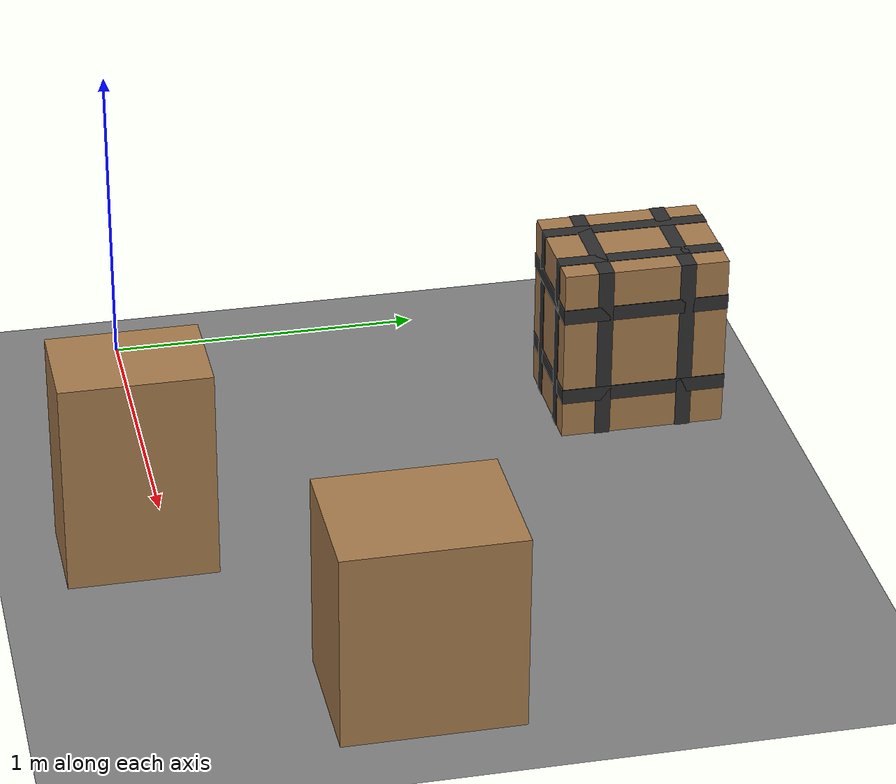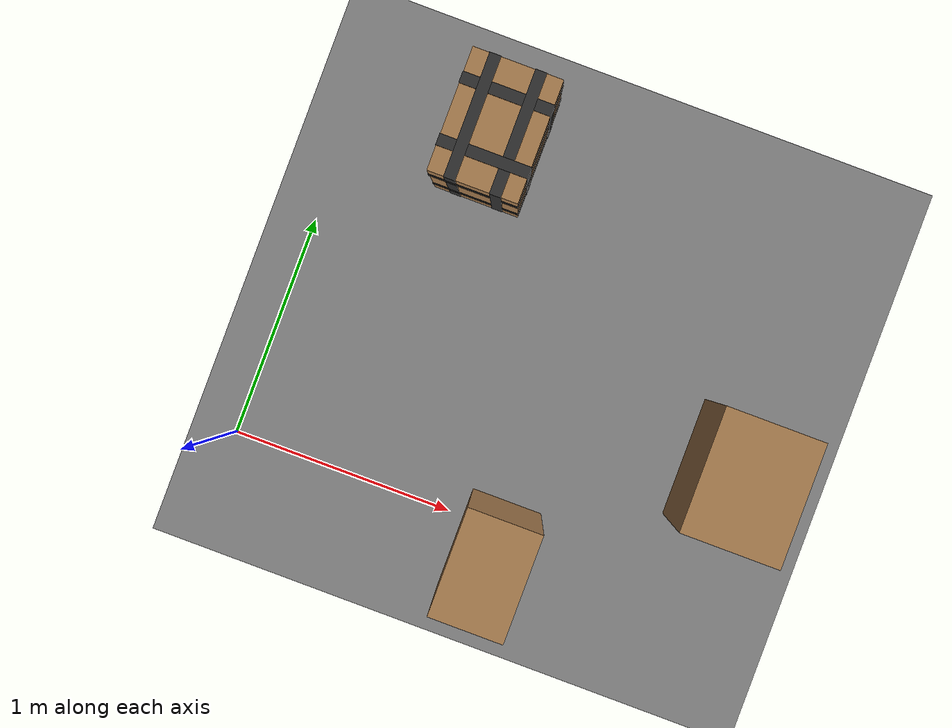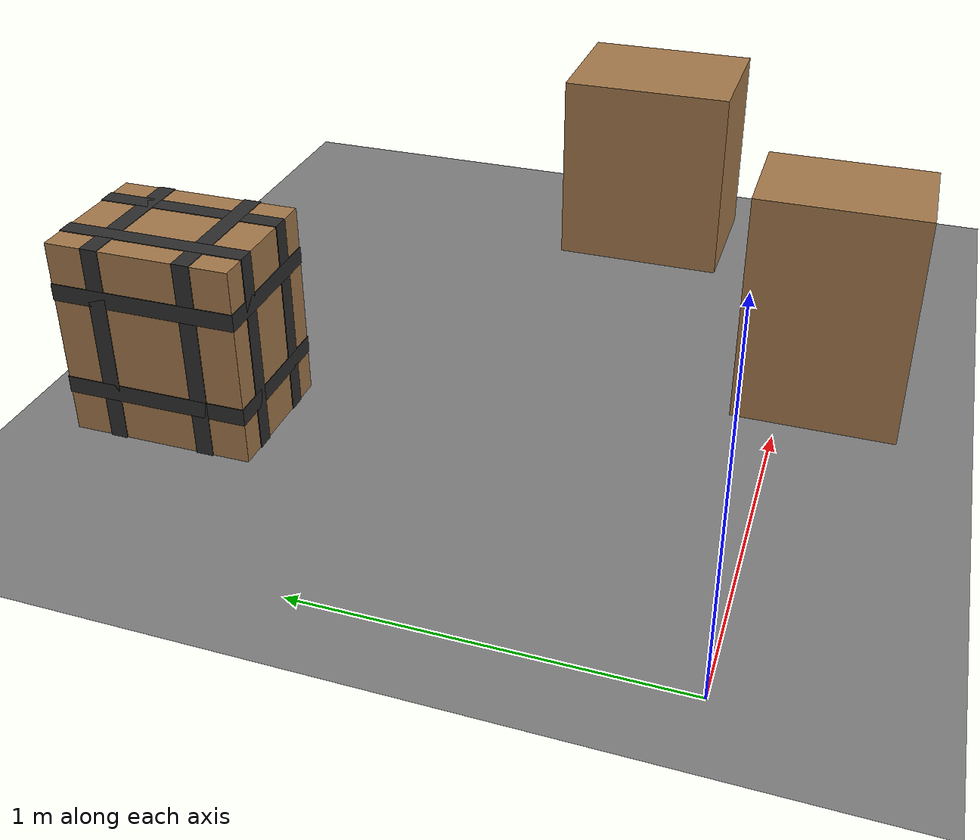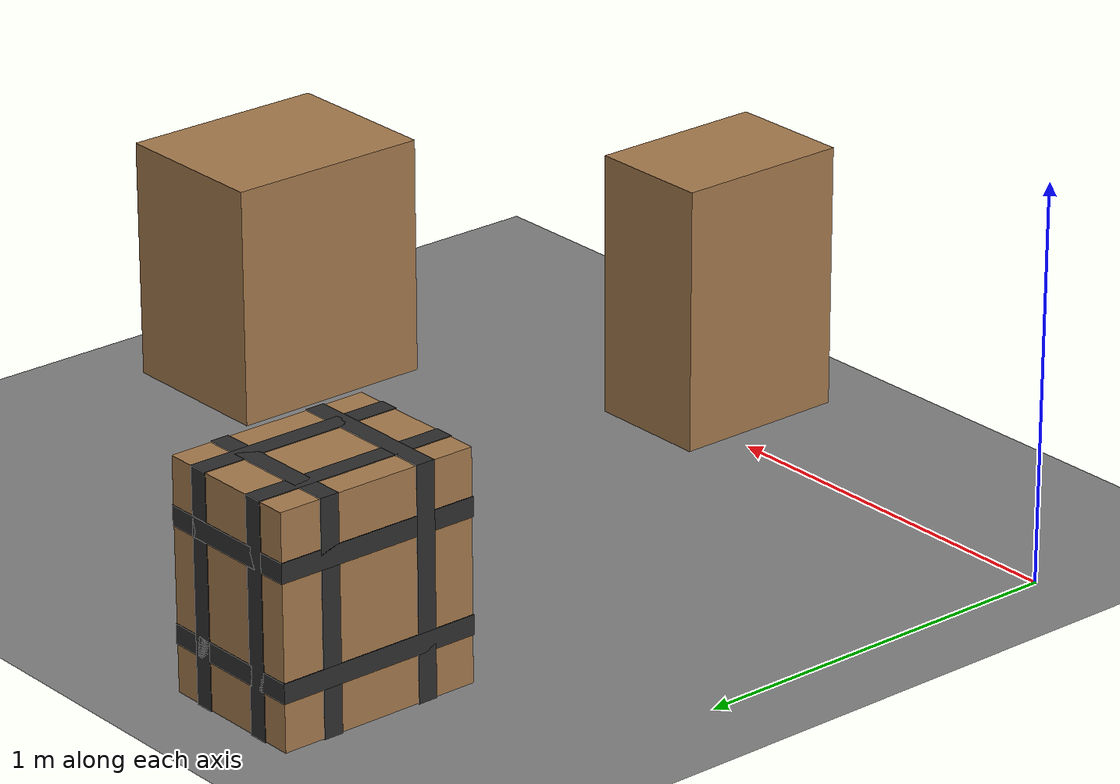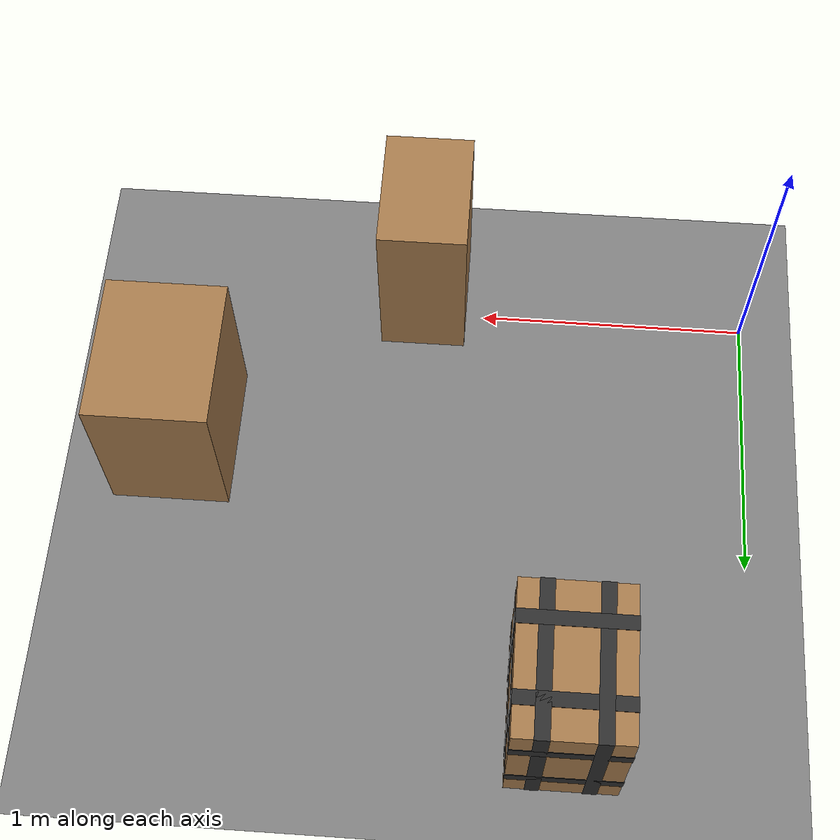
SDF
<sdf version="1.9">
 <world name="ecps295_lowbox_s9_monitor">
  <model name="ground_plane">
   <static>true</static>
   <link name="link">
    <collision name="collision">
     <geometry><plane><normal>0 0 1</normal><size>50 50</size></plane></geometry>
    </collision>
    <visual name="visual">
     <geometry><plane><normal>0 0 1</normal><size>50 50</size></plane></geometry>
     <material><ambient>0.5 0.5 0.5 1</ambient><diffuse>0.5 0.5 0.5 1</diffuse></material>
    </visual>
   </link>
  </model>
  <model name="lb0">
   <static>true</static>
   <pose>1.23 -0.1 0.341 0 0 0</pose>
   <link name="link">
    <collision name="c"><geometry><box><size>0.32 0.46 0.68</size></box></geometry></collision>
    <visual name="v">
     <geometry><box><size>0.32 0.46 0.68</size></box></geometry>
     <material><ambient>0.65 0.48 0.30 1</ambient><diffuse>0.65 0.48 0.30 1</diffuse></material>
    </visual>
   </link>
  </model>
  <model name="lb4">
   <static>true</static>
   <pose>0.64 1.59 0.291 0 0 0</pose>
   <link name="link">
    <collision name="c"><geometry><box><size>0.39 0.53 0.58</size></box></geometry></collision>
    <visual name="v">
     <geometry><box><size>0.39 0.53 0.58</size></box></geometry>
     <material><ambient>0.65 0.48 0.30 1</ambient><diffuse>0.65 0.48 0.30 1</diffuse></material>
    </visual>
    <visual name="tape_ring0">
     <pose>0.000 0.000 -0.145 0 0 0</pose>
     <geometry><box><size>0.394 0.534 0.050</size></box></geometry>
     <material><ambient>0.18 0.18 0.18 1</ambient><diffuse>0.18 0.18 0.18 1</diffuse></material>
    </visual>
    <visual name="tape_bx0">
     <pose>-0.098 0.000 0.000 0 0 0</pose>
     <geometry><box><size>0.050 0.534 0.584</size></box></geometry>
     <material><ambient>0.18 0.18 0.18 1</ambient><diffuse>0.18 0.18 0.18 1</diffuse></material>
    </visual>
    <visual name="tape_by0">
     <pose>0.000 -0.133 0.000 0 0 0</pose>
     <geometry><box><size>0.394 0.050 0.584</size></box></geometry>
     <material><ambient>0.18 0.18 0.18 1</ambient><diffuse>0.18 0.18 0.18 1</diffuse></material>
    </visual>
    <visual name="tape_ring1">
     <pose>0.000 0.000 0.145 0 0 0</pose>
     <geometry><box><size>0.394 0.534 0.050</size></box></geometry>
     <material><ambient>0.18 0.18 0.18 1</ambient><diffuse>0.18 0.18 0.18 1</diffuse></material>
    </visual>
    <visual name="tape_bx1">
     <pose>0.098 0.000 0.000 0 0 0</pose>
     <geometry><box><size>0.050 0.534 0.584</size></box></geometry>
     <material><ambient>0.18 0.18 0.18 1</ambient><diffuse>0.18 0.18 0.18 1</diffuse></material>
    </visual>
    <visual name="tape_by1">
     <pose>0.000 0.133 0.000 0 0 0</pose>
     <geometry><box><size>0.394 0.050 0.584</size></box></geometry>
     <material><ambient>0.18 0.18 0.18 1</ambient><diffuse>0.18 0.18 0.18 1</diffuse></material>
    </visual>
   </link>
  </model>
  <model name="lb5">
   <static>true</static>
   <pose>2.11 0.59 0.309 0 0 0</pose>
   <link name="link">
    <collision name="c"><geometry><box><size>0.43 0.54 0.62</size></box></geometry></collision>
    <visual name="v">
     <geometry><box><size>0.43 0.54 0.62</size></box></geometry>
     <material><ambient>0.65 0.48 0.30 1</ambient><diffuse>0.65 0.48 0.30 1</diffuse></material>
    </visual>
   </link>
  </model>
 </world>
</sdf>
